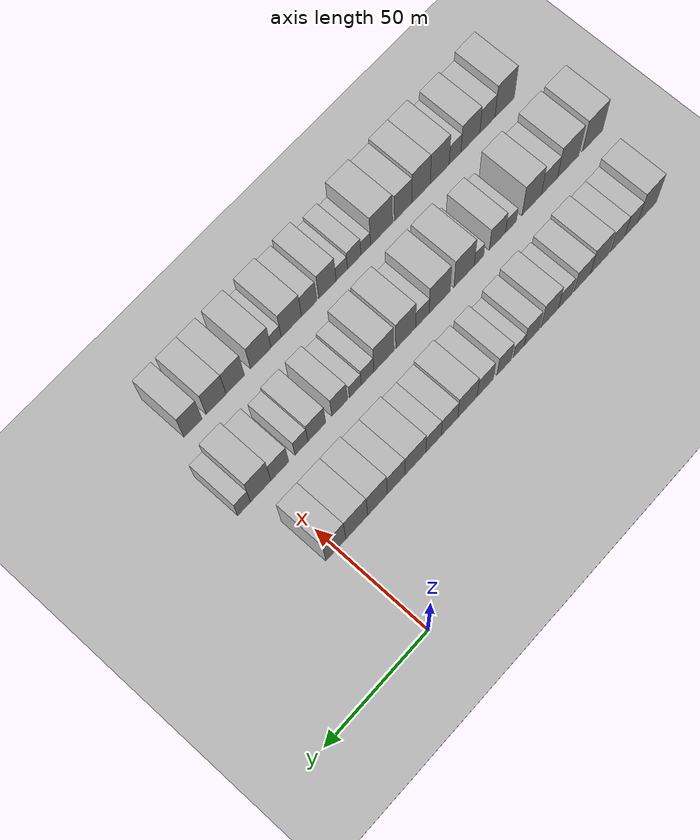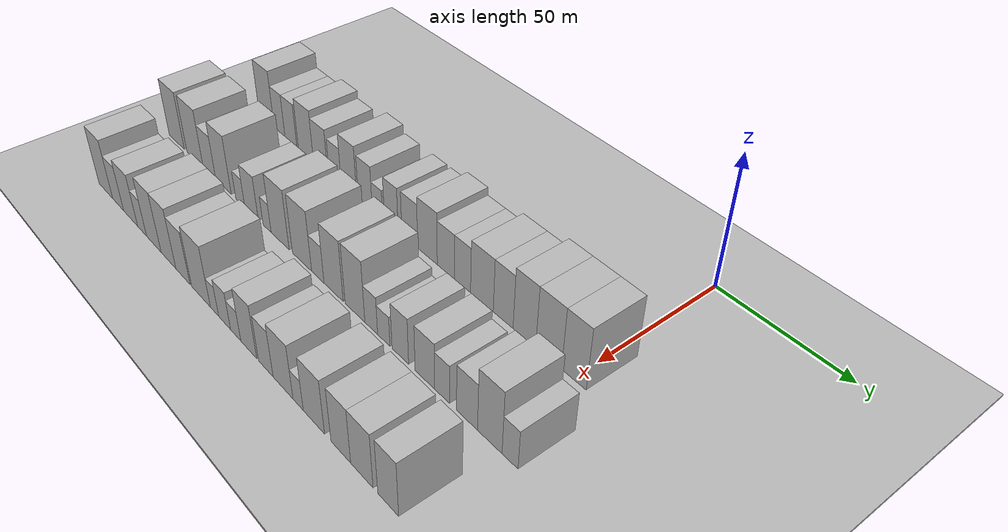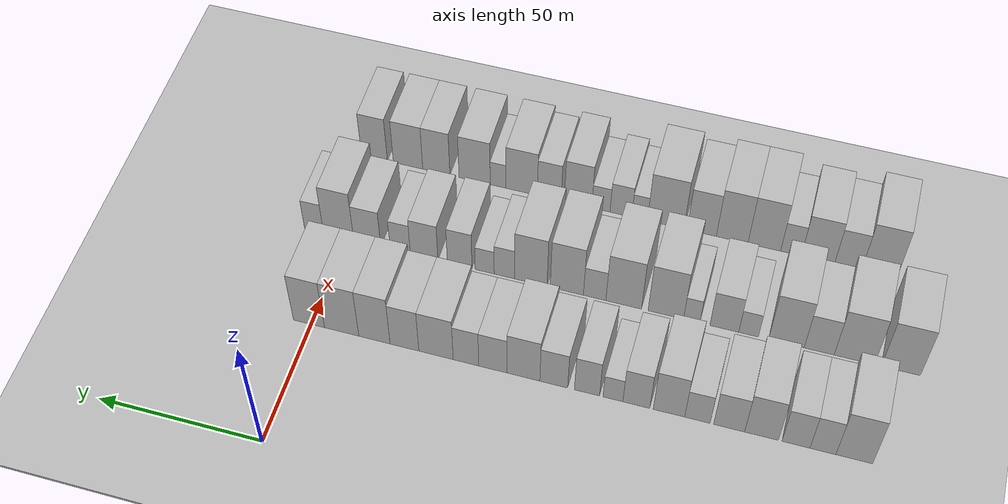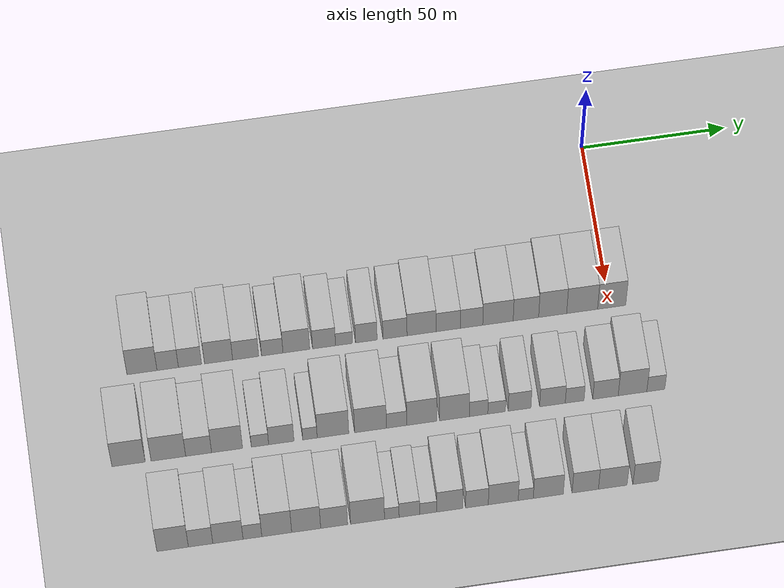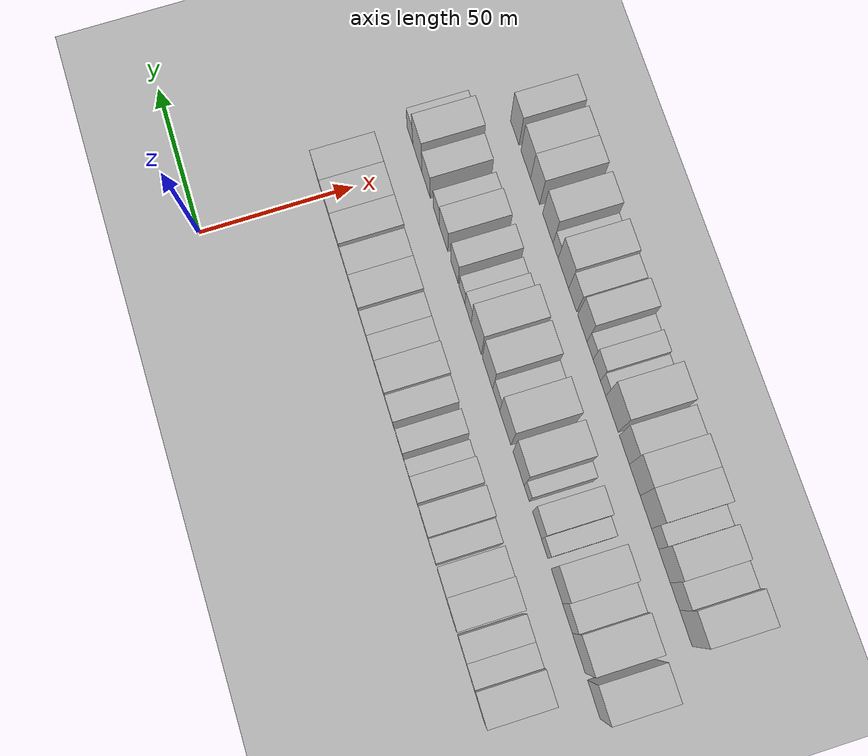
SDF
<sdf version="1.6">
 <world name="default">
  <include><name>ground_plane_1</name><uri>model://HANNAS_ground_plane</uri></include>
  <include>
   <name>ground_plane_2</name>
   <uri>model://HANNAS_ground_plane</uri>
   <pose>100 0 0  0 0 0</pose>
  </include>
  <model name="building_22">
   <static>1</static>
   <pose>50.0000 -160.9771 0 0.000000 0.000000 0.000000</pose>
   <link name="link">
    <pose>0 0 12.00 0 0 0</pose>
    <collision name="collision"><geometry><box><size>20.0000 10.2938 24.0000</size></box></geometry></collision>
    <visual name="visual">
     <cast_shadows>0</cast_shadows>
     <geometry><box><size>20.0000 10.2938 24.0000</size></box></geometry>
     <material>
      <script>
       <uri>model://HANNAS_wall/materials/scripts</uri>
       <uri>model://HANNAS_wall/materials/textures</uri>
       <name>vrc/HANNAS_wall</name>
      </script>
     </material>
    </visual>
   </link>
  </model>
  <model name="building_23">
   <static>1</static>
   <pose>50.0000 -152.1624 0 0.000000 0.000000 0.000000</pose>
   <link name="link">
    <pose>0 0 9.00 0 0 0</pose>
    <collision name="collision"><geometry><box><size>20.0000 7.3357 18.0000</size></box></geometry></collision>
    <visual name="visual">
     <cast_shadows>0</cast_shadows>
     <geometry><box><size>20.0000 7.3357 18.0000</size></box></geometry>
     <material>
      <script>
       <uri>model://HANNAS_wall/materials/scripts</uri>
       <uri>model://HANNAS_wall/materials/textures</uri>
       <name>vrc/HANNAS_wall</name>
      </script>
     </material>
    </visual>
   </link>
  </model>
  <model name="building_24">
   <static>1</static>
   <pose>50.0000 -144.5276 0 0.000000 0.000000 0.000000</pose>
   <link name="link">
    <pose>0 0 9.00 0 0 0</pose>
    <collision name="collision"><geometry><box><size>20.0000 7.9338 18.0000</size></box></geometry></collision>
    <visual name="visual">
     <cast_shadows>0</cast_shadows>
     <geometry><box><size>20.0000 7.9338 18.0000</size></box></geometry>
     <material>
      <script>
       <uri>model://HANNAS_wall/materials/scripts</uri>
       <uri>model://HANNAS_wall/materials/textures</uri>
       <name>vrc/HANNAS_wall</name>
      </script>
     </material>
    </visual>
   </link>
  </model>
  <model name="building_25">
   <static>1</static>
   <pose>50.0000 -134.7322 0 0.000000 0.000000 0.000000</pose>
   <link name="link">
    <pose>0 0 10.50 0 0 0</pose>
    <collision name="collision"><geometry><box><size>20.0000 9.6570 21.0000</size></box></geometry></collision>
    <visual name="visual">
     <cast_shadows>0</cast_shadows>
     <geometry><box><size>20.0000 9.6570 21.0000</size></box></geometry>
     <material>
      <script>
       <uri>model://HANNAS_wall/materials/scripts</uri>
       <uri>model://HANNAS_wall/materials/textures</uri>
       <name>vrc/HANNAS_wall</name>
      </script>
     </material>
    </visual>
   </link>
  </model>
  <model name="building_26">
   <static>1</static>
   <pose>50.0000 -125.4382 0 0.000000 0.000000 0.000000</pose>
   <link name="link">
    <pose>0 0 9.00 0 0 0</pose>
    <collision name="collision"><geometry><box><size>20.0000 8.9311 18.0000</size></box></geometry></collision>
    <visual name="visual">
     <cast_shadows>0</cast_shadows>
     <geometry><box><size>20.0000 8.9311 18.0000</size></box></geometry>
     <material>
      <script>
       <uri>model://HANNAS_wall/materials/scripts</uri>
       <uri>model://HANNAS_wall/materials/textures</uri>
       <name>vrc/HANNAS_wall</name>
      </script>
     </material>
    </visual>
   </link>
  </model>
  <model name="building_27">
   <static>1</static>
   <pose>50.0000 -116.3024 0 0.000000 0.000000 0.000000</pose>
   <link name="link">
    <pose>0 0 7.50 0 0 0</pose>
    <collision name="collision"><geometry><box><size>20.0000 7.3405 15.0000</size></box></geometry></collision>
    <visual name="visual">
     <cast_shadows>0</cast_shadows>
     <geometry><box><size>20.0000 7.3405 15.0000</size></box></geometry>
     <material>
      <script>
       <uri>model://HANNAS_wall/materials/scripts</uri>
       <uri>model://HANNAS_wall/materials/textures</uri>
       <name>vrc/HANNAS_wall</name>
      </script>
     </material>
    </visual>
   </link>
  </model>
  <model name="building_28">
   <static>1</static>
   <pose>50.0000 -108.0398 0 0.000000 0.000000 0.000000</pose>
   <link name="link">
    <pose>0 0 10.50 0 0 0</pose>
    <collision name="collision"><geometry><box><size>20.0000 9.1847 21.0000</size></box></geometry></collision>
    <visual name="visual">
     <cast_shadows>0</cast_shadows>
     <geometry><box><size>20.0000 9.1847 21.0000</size></box></geometry>
     <material>
      <script>
       <uri>model://HANNAS_wall/materials/scripts</uri>
       <uri>model://HANNAS_wall/materials/textures</uri>
       <name>vrc/HANNAS_wall</name>
      </script>
     </material>
    </visual>
   </link>
  </model>
  <model name="building_29">
   <static>1</static>
   <pose>50.0000 -98.5034 0 0.000000 0.000000 0.000000</pose>
   <link name="link">
    <pose>0 0 9.00 0 0 0</pose>
    <collision name="collision"><geometry><box><size>20.0000 7.8880 18.0000</size></box></geometry></collision>
    <visual name="visual">
     <cast_shadows>0</cast_shadows>
     <geometry><box><size>20.0000 7.8880 18.0000</size></box></geometry>
     <material>
      <script>
       <uri>model://HANNAS_wall/materials/scripts</uri>
       <uri>model://HANNAS_wall/materials/textures</uri>
       <name>vrc/HANNAS_wall</name>
      </script>
     </material>
    </visual>
   </link>
  </model>
  <model name="building_30">
   <static>1</static>
   <pose>50.0000 -91.6284 0 0.000000 0.000000 0.000000</pose>
   <link name="link">
    <pose>0 0 6.00 0 0 0</pose>
    <collision name="collision"><geometry><box><size>20.0000 5.8620 12.0000</size></box></geometry></collision>
    <visual name="visual">
     <cast_shadows>0</cast_shadows>
     <geometry><box><size>20.0000 5.8620 12.0000</size></box></geometry>
     <material>
      <script>
       <uri>model://HANNAS_wall/materials/scripts</uri>
       <uri>model://HANNAS_wall/materials/textures</uri>
       <name>vrc/HANNAS_wall</name>
      </script>
     </material>
    </visual>
   </link>
  </model>
  <model name="building_31">
   <static>1</static>
   <pose>50.0000 -83.9766 0 0.000000 0.000000 0.000000</pose>
   <link name="link">
    <pose>0 0 9.00 0 0 0</pose>
    <collision name="collision"><geometry><box><size>20.0000 7.4414 18.0000</size></box></geometry></collision>
    <visual name="visual">
     <cast_shadows>0</cast_shadows>
     <geometry><box><size>20.0000 7.4414 18.0000</size></box></geometry>
     <material>
      <script>
       <uri>model://HANNAS_wall/materials/scripts</uri>
       <uri>model://HANNAS_wall/materials/textures</uri>
       <name>vrc/HANNAS_wall</name>
      </script>
     </material>
    </visual>
   </link>
  </model>
  <model name="building_32">
   <static>1</static>
   <pose>50.0000 -74.1132 0 0.000000 0.000000 0.000000</pose>
   <link name="link">
    <pose>0 0 9.00 0 0 0</pose>
    <collision name="collision"><geometry><box><size>20.0000 8.2855 18.0000</size></box></geometry></collision>
    <visual name="visual">
     <cast_shadows>0</cast_shadows>
     <geometry><box><size>20.0000 8.2855 18.0000</size></box></geometry>
     <material>
      <script>
       <uri>model://HANNAS_wall/materials/scripts</uri>
       <uri>model://HANNAS_wall/materials/textures</uri>
       <name>vrc/HANNAS_wall</name>
      </script>
     </material>
    </visual>
   </link>
  </model>
  <model name="building_33">
   <static>1</static>
   <pose>50.0000 -64.9987 0 0.000000 0.000000 0.000000</pose>
   <link name="link">
    <pose>0 0 10.50 0 0 0</pose>
    <collision name="collision"><geometry><box><size>20.0000 9.9436 21.0000</size></box></geometry></collision>
    <visual name="visual">
     <cast_shadows>0</cast_shadows>
     <geometry><box><size>20.0000 9.9436 21.0000</size></box></geometry>
     <material>
      <script>
       <uri>model://HANNAS_wall/materials/scripts</uri>
       <uri>model://HANNAS_wall/materials/textures</uri>
       <name>vrc/HANNAS_wall</name>
      </script>
     </material>
    </visual>
   </link>
  </model>
  <model name="building_34">
   <static>1</static>
   <pose>50.0000 -55.8091 0 0.000000 0.000000 0.000000</pose>
   <link name="link">
    <pose>0 0 9.00 0 0 0</pose>
    <collision name="collision"><geometry><box><size>20.0000 8.4356 18.0000</size></box></geometry></collision>
    <visual name="visual">
     <cast_shadows>0</cast_shadows>
     <geometry><box><size>20.0000 8.4356 18.0000</size></box></geometry>
     <material>
      <script>
       <uri>model://HANNAS_wall/materials/scripts</uri>
       <uri>model://HANNAS_wall/materials/textures</uri>
       <name>vrc/HANNAS_wall</name>
      </script>
     </material>
    </visual>
   </link>
  </model>
  <model name="building_35">
   <static>1</static>
   <pose>50.0000 -47.7244 0 0.000000 0.000000 0.000000</pose>
   <link name="link">
    <pose>0 0 9.00 0 0 0</pose>
    <collision name="collision"><geometry><box><size>20.0000 7.7337 18.0000</size></box></geometry></collision>
    <visual name="visual">
     <cast_shadows>0</cast_shadows>
     <geometry><box><size>20.0000 7.7337 18.0000</size></box></geometry>
     <material>
      <script>
       <uri>model://HANNAS_wall/materials/scripts</uri>
       <uri>model://HANNAS_wall/materials/textures</uri>
       <name>vrc/HANNAS_wall</name>
      </script>
     </material>
    </visual>
   </link>
  </model>
  <model name="building_36">
   <static>1</static>
   <pose>50.0000 -38.6169 0 0.000000 0.000000 0.000000</pose>
   <link name="link">
    <pose>0 0 10.50 0 0 0</pose>
    <collision name="collision"><geometry><box><size>20.0000 10.4813 21.0000</size></box></geometry></collision>
    <visual name="visual">
     <cast_shadows>0</cast_shadows>
     <geometry><box><size>20.0000 10.4813 21.0000</size></box></geometry>
     <material>
      <script>
       <uri>model://HANNAS_wall/materials/scripts</uri>
       <uri>model://HANNAS_wall/materials/textures</uri>
       <name>vrc/HANNAS_wall</name>
      </script>
     </material>
    </visual>
   </link>
  </model>
  <model name="building_37">
   <static>1</static>
   <pose>50.0000 -28.9720 0 0.000000 0.000000 0.000000</pose>
   <link name="link">
    <pose>0 0 10.50 0 0 0</pose>
    <collision name="collision"><geometry><box><size>20.0000 8.8084 21.0000</size></box></geometry></collision>
    <visual name="visual">
     <cast_shadows>0</cast_shadows>
     <geometry><box><size>20.0000 8.8084 21.0000</size></box></geometry>
     <material>
      <script>
       <uri>model://HANNAS_wall/materials/scripts</uri>
       <uri>model://HANNAS_wall/materials/textures</uri>
       <name>vrc/HANNAS_wall</name>
      </script>
     </material>
    </visual>
   </link>
  </model>
  <model name="building_38">
   <static>1</static>
   <pose>50.0000 -19.7284 0 0.000000 0.000000 0.000000</pose>
   <link name="link">
    <pose>0 0 12.00 0 0 0</pose>
    <collision name="collision"><geometry><box><size>20.0000 9.6789 24.0000</size></box></geometry></collision>
    <visual name="visual">
     <cast_shadows>0</cast_shadows>
     <geometry><box><size>20.0000 9.6789 24.0000</size></box></geometry>
     <material>
      <script>
       <uri>model://HANNAS_wall/materials/scripts</uri>
       <uri>model://HANNAS_wall/materials/textures</uri>
       <name>vrc/HANNAS_wall</name>
      </script>
     </material>
    </visual>
   </link>
  </model>
  <model name="building_39">
   <static>1</static>
   <pose>50.0000 -9.5518 0 0.000000 0.000000 0.000000</pose>
   <link name="link">
    <pose>0 0 12.00 0 0 0</pose>
    <collision name="collision"><geometry><box><size>20.0000 10.6742 24.0000</size></box></geometry></collision>
    <visual name="visual">
     <cast_shadows>0</cast_shadows>
     <geometry><box><size>20.0000 10.6742 24.0000</size></box></geometry>
     <material>
      <script>
       <uri>model://HANNAS_wall/materials/scripts</uri>
       <uri>model://HANNAS_wall/materials/textures</uri>
       <name>vrc/HANNAS_wall</name>
      </script>
     </material>
    </visual>
   </link>
  </model>
  <model name="building_40">
   <static>1</static>
   <pose>50.0000 0.6516 0 0.000000 0.000000 0.000000</pose>
   <link name="link">
    <pose>0 0 12.00 0 0 0</pose>
    <collision name="collision"><geometry><box><size>20.0000 9.7326 24.0000</size></box></geometry></collision>
    <visual name="visual">
     <cast_shadows>0</cast_shadows>
     <geometry><box><size>20.0000 9.7326 24.0000</size></box></geometry>
     <material>
      <script>
       <uri>model://HANNAS_wall/materials/scripts</uri>
       <uri>model://HANNAS_wall/materials/textures</uri>
       <name>vrc/HANNAS_wall</name>
      </script>
     </material>
    </visual>
   </link>
  </model>
  <model name="building_104">
   <static>1</static>
   <pose>82.0000 -169.5747 0 0.000000 0.000000 0.000000</pose>
   <link name="link">
    <pose>0 0 12.00 0 0 0</pose>
    <collision name="collision"><geometry><box><size>20.0000 11.3066 24.0000</size></box></geometry></collision>
    <visual name="visual">
     <cast_shadows>0</cast_shadows>
     <geometry><box><size>20.0000 11.3066 24.0000</size></box></geometry>
     <material>
      <script>
       <uri>model://HANNAS_wall/materials/scripts</uri>
       <uri>model://HANNAS_wall/materials/textures</uri>
       <name>vrc/HANNAS_wall</name>
      </script>
     </material>
    </visual>
   </link>
  </model>
  <model name="building_105">
   <static>1</static>
   <pose>82.0000 -156.0349 0 0.000000 0.000000 0.000000</pose>
   <link name="link">
    <pose>0 0 12.00 0 0 0</pose>
    <collision name="collision"><geometry><box><size>20.0000 11.7731 24.0000</size></box></geometry></collision>
    <visual name="visual">
     <cast_shadows>0</cast_shadows>
     <geometry><box><size>20.0000 11.7731 24.0000</size></box></geometry>
     <material>
      <script>
       <uri>model://HANNAS_wall/materials/scripts</uri>
       <uri>model://HANNAS_wall/materials/textures</uri>
       <name>vrc/HANNAS_wall</name>
      </script>
     </material>
    </visual>
   </link>
  </model>
  <model name="building_106">
   <static>1</static>
   <pose>82.0000 -145.7401 0 0.000000 0.000000 0.000000</pose>
   <link name="link">
    <pose>0 0 9.00 0 0 0</pose>
    <collision name="collision"><geometry><box><size>20.0000 8.8165 18.0000</size></box></geometry></collision>
    <visual name="visual">
     <cast_shadows>0</cast_shadows>
     <geometry><box><size>20.0000 8.8165 18.0000</size></box></geometry>
     <material>
      <script>
       <uri>model://HANNAS_wall/materials/scripts</uri>
       <uri>model://HANNAS_wall/materials/textures</uri>
       <name>vrc/HANNAS_wall</name>
      </script>
     </material>
    </visual>
   </link>
  </model>
  <model name="building_107">
   <static>1</static>
   <pose>82.0000 -136.0598 0 0.000000 0.000000 0.000000</pose>
   <link name="link">
    <pose>0 0 12.00 0 0 0</pose>
    <collision name="collision"><geometry><box><size>20.0000 10.5439 24.0000</size></box></geometry></collision>
    <visual name="visual">
     <cast_shadows>0</cast_shadows>
     <geometry><box><size>20.0000 10.5439 24.0000</size></box></geometry>
     <material>
      <script>
       <uri>model://HANNAS_wall/materials/scripts</uri>
       <uri>model://HANNAS_wall/materials/textures</uri>
       <name>vrc/HANNAS_wall</name>
      </script>
     </material>
    </visual>
   </link>
  </model>
  <model name="building_108">
   <static>1</static>
   <pose>82.0000 -124.8444 0 0.000000 0.000000 0.000000</pose>
   <link name="link">
    <pose>0 0 6.00 0 0 0</pose>
    <collision name="collision"><geometry><box><size>20.0000 5.8870 12.0000</size></box></geometry></collision>
    <visual name="visual">
     <cast_shadows>0</cast_shadows>
     <geometry><box><size>20.0000 5.8870 12.0000</size></box></geometry>
     <material>
      <script>
       <uri>model://HANNAS_wall/materials/scripts</uri>
       <uri>model://HANNAS_wall/materials/textures</uri>
       <name>vrc/HANNAS_wall</name>
      </script>
     </material>
    </visual>
   </link>
  </model>
  <model name="building_109">
   <static>1</static>
   <pose>82.0000 -117.5791 0 0.000000 0.000000 0.000000</pose>
   <link name="link">
    <pose>0 0 9.00 0 0 0</pose>
    <collision name="collision"><geometry><box><size>20.0000 8.6437 18.0000</size></box></geometry></collision>
    <visual name="visual">
     <cast_shadows>0</cast_shadows>
     <geometry><box><size>20.0000 8.6437 18.0000</size></box></geometry>
     <material>
      <script>
       <uri>model://HANNAS_wall/materials/scripts</uri>
       <uri>model://HANNAS_wall/materials/textures</uri>
       <name>vrc/HANNAS_wall</name>
      </script>
     </material>
    </visual>
   </link>
  </model>
  <model name="building_110">
   <static>1</static>
   <pose>82.0000 -107.7934 0 0.000000 0.000000 0.000000</pose>
   <link name="link">
    <pose>0 0 6.00 0 0 0</pose>
    <collision name="collision"><geometry><box><size>20.0000 4.9277 12.0000</size></box></geometry></collision>
    <visual name="visual">
     <cast_shadows>0</cast_shadows>
     <geometry><box><size>20.0000 4.9277 12.0000</size></box></geometry>
     <material>
      <script>
       <uri>model://HANNAS_wall/materials/scripts</uri>
       <uri>model://HANNAS_wall/materials/textures</uri>
       <name>vrc/HANNAS_wall</name>
      </script>
     </material>
    </visual>
   </link>
  </model>
  <model name="building_111">
   <static>1</static>
   <pose>82.0000 -99.9474 0 0.000000 0.000000 0.000000</pose>
   <link name="link">
    <pose>0 0 12.00 0 0 0</pose>
    <collision name="collision"><geometry><box><size>20.0000 10.7643 24.0000</size></box></geometry></collision>
    <visual name="visual">
     <cast_shadows>0</cast_shadows>
     <geometry><box><size>20.0000 10.7643 24.0000</size></box></geometry>
     <material>
      <script>
       <uri>model://HANNAS_wall/materials/scripts</uri>
       <uri>model://HANNAS_wall/materials/textures</uri>
       <name>vrc/HANNAS_wall</name>
      </script>
     </material>
    </visual>
   </link>
  </model>
  <model name="building_112">
   <static>1</static>
   <pose>82.0000 -87.1145 0 0.000000 0.000000 0.000000</pose>
   <link name="link">
    <pose>0 0 12.00 0 0 0</pose>
    <collision name="collision"><geometry><box><size>20.0000 10.9016 24.0000</size></box></geometry></collision>
    <visual name="visual">
     <cast_shadows>0</cast_shadows>
     <geometry><box><size>20.0000 10.9016 24.0000</size></box></geometry>
     <material>
      <script>
       <uri>model://HANNAS_wall/materials/scripts</uri>
       <uri>model://HANNAS_wall/materials/textures</uri>
       <name>vrc/HANNAS_wall</name>
      </script>
     </material>
    </visual>
   </link>
  </model>
  <model name="building_113">
   <static>1</static>
   <pose>82.0000 -78.2129 0 0.000000 0.000000 0.000000</pose>
   <link name="link">
    <pose>0 0 7.50 0 0 0</pose>
    <collision name="collision"><geometry><box><size>20.0000 6.9017 15.0000</size></box></geometry></collision>
    <visual name="visual">
     <cast_shadows>0</cast_shadows>
     <geometry><box><size>20.0000 6.9017 15.0000</size></box></geometry>
     <material>
      <script>
       <uri>model://HANNAS_wall/materials/scripts</uri>
       <uri>model://HANNAS_wall/materials/textures</uri>
       <name>vrc/HANNAS_wall</name>
      </script>
     </material>
    </visual>
   </link>
  </model>
  <model name="building_114">
   <static>1</static>
   <pose>82.0000 -69.6232 0 0.000000 0.000000 0.000000</pose>
   <link name="link">
    <pose>0 0 12.00 0 0 0</pose>
    <collision name="collision"><geometry><box><size>20.0000 10.2777 24.0000</size></box></geometry></collision>
    <visual name="visual">
     <cast_shadows>0</cast_shadows>
     <geometry><box><size>20.0000 10.2777 24.0000</size></box></geometry>
     <material>
      <script>
       <uri>model://HANNAS_wall/materials/scripts</uri>
       <uri>model://HANNAS_wall/materials/textures</uri>
       <name>vrc/HANNAS_wall</name>
      </script>
     </material>
    </visual>
   </link>
  </model>
  <model name="building_115">
   <static>1</static>
   <pose>82.0000 -58.4166 0 0.000000 0.000000 0.000000</pose>
   <link name="link">
    <pose>0 0 12.00 0 0 0</pose>
    <collision name="collision"><geometry><box><size>20.0000 10.1355 24.0000</size></box></geometry></collision>
    <visual name="visual">
     <cast_shadows>0</cast_shadows>
     <geometry><box><size>20.0000 10.1355 24.0000</size></box></geometry>
     <material>
      <script>
       <uri>model://HANNAS_wall/materials/scripts</uri>
       <uri>model://HANNAS_wall/materials/textures</uri>
       <name>vrc/HANNAS_wall</name>
      </script>
     </material>
    </visual>
   </link>
  </model>
  <model name="building_116">
   <static>1</static>
   <pose>82.0000 -50.1716 0 0.000000 0.000000 0.000000</pose>
   <link name="link">
    <pose>0 0 7.50 0 0 0</pose>
    <collision name="collision"><geometry><box><size>20.0000 6.3544 15.0000</size></box></geometry></collision>
    <visual name="visual">
     <cast_shadows>0</cast_shadows>
     <geometry><box><size>20.0000 6.3544 15.0000</size></box></geometry>
     <material>
      <script>
       <uri>model://HANNAS_wall/materials/scripts</uri>
       <uri>model://HANNAS_wall/materials/textures</uri>
       <name>vrc/HANNAS_wall</name>
      </script>
     </material>
    </visual>
   </link>
  </model>
  <model name="building_117">
   <static>1</static>
   <pose>82.0000 -44.0033 0 0.000000 0.000000 0.000000</pose>
   <link name="link">
    <pose>0 0 6.00 0 0 0</pose>
    <collision name="collision"><geometry><box><size>20.0000 5.9822 12.0000</size></box></geometry></collision>
    <visual name="visual">
     <cast_shadows>0</cast_shadows>
     <geometry><box><size>20.0000 5.9822 12.0000</size></box></geometry>
     <material>
      <script>
       <uri>model://HANNAS_wall/materials/scripts</uri>
       <uri>model://HANNAS_wall/materials/textures</uri>
       <name>vrc/HANNAS_wall</name>
      </script>
     </material>
    </visual>
   </link>
  </model>
  <model name="building_118">
   <static>1</static>
   <pose>82.0000 -36.1231 0 0.000000 0.000000 0.000000</pose>
   <link name="link">
    <pose>0 0 9.00 0 0 0</pose>
    <collision name="collision"><geometry><box><size>20.0000 7.7782 18.0000</size></box></geometry></collision>
    <visual name="visual">
     <cast_shadows>0</cast_shadows>
     <geometry><box><size>20.0000 7.7782 18.0000</size></box></geometry>
     <material>
      <script>
       <uri>model://HANNAS_wall/materials/scripts</uri>
       <uri>model://HANNAS_wall/materials/textures</uri>
       <name>vrc/HANNAS_wall</name>
      </script>
     </material>
    </visual>
   </link>
  </model>
  <model name="building_119">
   <static>1</static>
   <pose>82.0000 -24.8423 0 0.000000 0.000000 0.000000</pose>
   <link name="link">
    <pose>0 0 9.00 0 0 0</pose>
    <collision name="collision"><geometry><box><size>20.0000 8.7834 18.0000</size></box></geometry></collision>
    <visual name="visual">
     <cast_shadows>0</cast_shadows>
     <geometry><box><size>20.0000 8.7834 18.0000</size></box></geometry>
     <material>
      <script>
       <uri>model://HANNAS_wall/materials/scripts</uri>
       <uri>model://HANNAS_wall/materials/textures</uri>
       <name>vrc/HANNAS_wall</name>
      </script>
     </material>
    </visual>
   </link>
  </model>
  <model name="building_120">
   <static>1</static>
   <pose>82.0000 -17.2281 0 0.000000 0.000000 0.000000</pose>
   <link name="link">
    <pose>0 0 7.50 0 0 0</pose>
    <collision name="collision"><geometry><box><size>20.0000 6.4450 15.0000</size></box></geometry></collision>
    <visual name="visual">
     <cast_shadows>0</cast_shadows>
     <geometry><box><size>20.0000 6.4450 15.0000</size></box></geometry>
     <material>
      <script>
       <uri>model://HANNAS_wall/materials/scripts</uri>
       <uri>model://HANNAS_wall/materials/textures</uri>
       <name>vrc/HANNAS_wall</name>
      </script>
     </material>
    </visual>
   </link>
  </model>
  <model name="building_121">
   <static>1</static>
   <pose>82.0000 -6.6397 0 0.000000 0.000000 0.000000</pose>
   <link name="link">
    <pose>0 0 9.00 0 0 0</pose>
    <collision name="collision"><geometry><box><size>20.0000 8.7318 18.0000</size></box></geometry></collision>
    <visual name="visual">
     <cast_shadows>0</cast_shadows>
     <geometry><box><size>20.0000 8.7318 18.0000</size></box></geometry>
     <material>
      <script>
       <uri>model://HANNAS_wall/materials/scripts</uri>
       <uri>model://HANNAS_wall/materials/textures</uri>
       <name>vrc/HANNAS_wall</name>
      </script>
     </material>
    </visual>
   </link>
  </model>
  <model name="building_122">
   <static>1</static>
   <pose>82.0000 2.6378 0 0.000000 0.000000 0.000000</pose>
   <link name="link">
    <pose>0 0 12.00 0 0 0</pose>
    <collision name="collision"><geometry><box><size>20.0000 9.8232 24.0000</size></box></geometry></collision>
    <visual name="visual">
     <cast_shadows>0</cast_shadows>
     <geometry><box><size>20.0000 9.8232 24.0000</size></box></geometry>
     <material>
      <script>
       <uri>model://HANNAS_wall/materials/scripts</uri>
       <uri>model://HANNAS_wall/materials/textures</uri>
       <name>vrc/HANNAS_wall</name>
      </script>
     </material>
    </visual>
   </link>
  </model>
  <model name="building_123">
   <static>1</static>
   <pose>82.0000 10.6384 0 0.000000 0.000000 0.000000</pose>
   <link name="link">
    <pose>0 0 7.50 0 0 0</pose>
    <collision name="collision"><geometry><box><size>20.0000 6.1781 15.0000</size></box></geometry></collision>
    <visual name="visual">
     <cast_shadows>0</cast_shadows>
     <geometry><box><size>20.0000 6.1781 15.0000</size></box></geometry>
     <material>
      <script>
       <uri>model://HANNAS_wall/materials/scripts</uri>
       <uri>model://HANNAS_wall/materials/textures</uri>
       <name>vrc/HANNAS_wall</name>
      </script>
     </material>
    </visual>
   </link>
  </model>
  <model name="building_181">
   <static>1</static>
   <pose>114.0000 -158.7139 0 0.000000 0.000000 0.000000</pose>
   <link name="link">
    <pose>0 0 12.00 0 0 0</pose>
    <collision name="collision"><geometry><box><size>20.0000 10.6459 24.0000</size></box></geometry></collision>
    <visual name="visual">
     <cast_shadows>0</cast_shadows>
     <geometry><box><size>20.0000 10.6459 24.0000</size></box></geometry>
     <material>
      <script>
       <uri>model://HANNAS_wall/materials/scripts</uri>
       <uri>model://HANNAS_wall/materials/textures</uri>
       <name>vrc/HANNAS_wall</name>
      </script>
     </material>
    </visual>
   </link>
  </model>
  <model name="building_182">
   <static>1</static>
   <pose>114.0000 -149.2567 0 0.000000 0.000000 0.000000</pose>
   <link name="link">
    <pose>0 0 9.00 0 0 0</pose>
    <collision name="collision"><geometry><box><size>20.0000 8.2686 18.0000</size></box></geometry></collision>
    <visual name="visual">
     <cast_shadows>0</cast_shadows>
     <geometry><box><size>20.0000 8.2686 18.0000</size></box></geometry>
     <material>
      <script>
       <uri>model://HANNAS_wall/materials/scripts</uri>
       <uri>model://HANNAS_wall/materials/textures</uri>
       <name>vrc/HANNAS_wall</name>
      </script>
     </material>
    </visual>
   </link>
  </model>
  <model name="building_183">
   <static>1</static>
   <pose>114.0000 -140.0115 0 0.000000 0.000000 0.000000</pose>
   <link name="link">
    <pose>0 0 10.50 0 0 0</pose>
    <collision name="collision"><geometry><box><size>20.0000 10.2218 21.0000</size></box></geometry></collision>
    <visual name="visual">
     <cast_shadows>0</cast_shadows>
     <geometry><box><size>20.0000 10.2218 21.0000</size></box></geometry>
     <material>
      <script>
       <uri>model://HANNAS_wall/materials/scripts</uri>
       <uri>model://HANNAS_wall/materials/textures</uri>
       <name>vrc/HANNAS_wall</name>
      </script>
     </material>
    </visual>
   </link>
  </model>
  <model name="building_184">
   <static>1</static>
   <pose>114.0000 -131.7333 0 0.000000 0.000000 0.000000</pose>
   <link name="link">
    <pose>0 0 7.50 0 0 0</pose>
    <collision name="collision"><geometry><box><size>20.0000 6.3345 15.0000</size></box></geometry></collision>
    <visual name="visual">
     <cast_shadows>0</cast_shadows>
     <geometry><box><size>20.0000 6.3345 15.0000</size></box></geometry>
     <material>
      <script>
       <uri>model://HANNAS_wall/materials/scripts</uri>
       <uri>model://HANNAS_wall/materials/textures</uri>
       <name>vrc/HANNAS_wall</name>
      </script>
     </material>
    </visual>
   </link>
  </model>
  <model name="building_185">
   <static>1</static>
   <pose>114.0000 -123.5079 0 0.000000 0.000000 0.000000</pose>
   <link name="link">
    <pose>0 0 12.00 0 0 0</pose>
    <collision name="collision"><geometry><box><size>20.0000 10.1165 24.0000</size></box></geometry></collision>
    <visual name="visual">
     <cast_shadows>0</cast_shadows>
     <geometry><box><size>20.0000 10.1165 24.0000</size></box></geometry>
     <material>
      <script>
       <uri>model://HANNAS_wall/materials/scripts</uri>
       <uri>model://HANNAS_wall/materials/textures</uri>
       <name>vrc/HANNAS_wall</name>
      </script>
     </material>
    </visual>
   </link>
  </model>
  <model name="building_186">
   <static>1</static>
   <pose>114.0000 -113.5415 0 0.000000 0.000000 0.000000</pose>
   <link name="link">
    <pose>0 0 12.00 0 0 0</pose>
    <collision name="collision"><geometry><box><size>20.0000 9.8163 24.0000</size></box></geometry></collision>
    <visual name="visual">
     <cast_shadows>0</cast_shadows>
     <geometry><box><size>20.0000 9.8163 24.0000</size></box></geometry>
     <material>
      <script>
       <uri>model://HANNAS_wall/materials/scripts</uri>
       <uri>model://HANNAS_wall/materials/textures</uri>
       <name>vrc/HANNAS_wall</name>
      </script>
     </material>
    </visual>
   </link>
  </model>
  <model name="building_187">
   <static>1</static>
   <pose>114.0000 -104.0672 0 0.000000 0.000000 0.000000</pose>
   <link name="link">
    <pose>0 0 10.50 0 0 0</pose>
    <collision name="collision"><geometry><box><size>20.0000 9.1324 21.0000</size></box></geometry></collision>
    <visual name="visual">
     <cast_shadows>0</cast_shadows>
     <geometry><box><size>20.0000 9.1324 21.0000</size></box></geometry>
     <material>
      <script>
       <uri>model://HANNAS_wall/materials/scripts</uri>
       <uri>model://HANNAS_wall/materials/textures</uri>
       <name>vrc/HANNAS_wall</name>
      </script>
     </material>
    </visual>
   </link>
  </model>
  <model name="building_188">
   <static>1</static>
   <pose>114.0000 -92.7396 0 0.000000 0.000000 0.000000</pose>
   <link name="link">
    <pose>0 0 12.00 0 0 0</pose>
    <collision name="collision"><geometry><box><size>20.0000 11.5228 24.0000</size></box></geometry></collision>
    <visual name="visual">
     <cast_shadows>0</cast_shadows>
     <geometry><box><size>20.0000 11.5228 24.0000</size></box></geometry>
     <material>
      <script>
       <uri>model://HANNAS_wall/materials/scripts</uri>
       <uri>model://HANNAS_wall/materials/textures</uri>
       <name>vrc/HANNAS_wall</name>
      </script>
     </material>
    </visual>
   </link>
  </model>
  <model name="building_189">
   <static>1</static>
   <pose>114.0000 -84.5058 0 0.000000 0.000000 0.000000</pose>
   <link name="link">
    <pose>0 0 6.00 0 0 0</pose>
    <collision name="collision"><geometry><box><size>20.0000 4.9447 12.0000</size></box></geometry></collision>
    <visual name="visual">
     <cast_shadows>0</cast_shadows>
     <geometry><box><size>20.0000 4.9447 12.0000</size></box></geometry>
     <material>
      <script>
       <uri>model://HANNAS_wall/materials/scripts</uri>
       <uri>model://HANNAS_wall/materials/textures</uri>
       <name>vrc/HANNAS_wall</name>
      </script>
     </material>
    </visual>
   </link>
  </model>
  <model name="building_190">
   <static>1</static>
   <pose>114.0000 -78.5611 0 0.000000 0.000000 0.000000</pose>
   <link name="link">
    <pose>0 0 7.50 0 0 0</pose>
    <collision name="collision"><geometry><box><size>20.0000 6.9448 15.0000</size></box></geometry></collision>
    <visual name="visual">
     <cast_shadows>0</cast_shadows>
     <geometry><box><size>20.0000 6.9448 15.0000</size></box></geometry>
     <material>
      <script>
       <uri>model://HANNAS_wall/materials/scripts</uri>
       <uri>model://HANNAS_wall/materials/textures</uri>
       <name>vrc/HANNAS_wall</name>
      </script>
     </material>
    </visual>
   </link>
  </model>
  <model name="building_191">
   <static>1</static>
   <pose>114.0000 -72.1791 0 0.000000 0.000000 0.000000</pose>
   <link name="link">
    <pose>0 0 6.00 0 0 0</pose>
    <collision name="collision"><geometry><box><size>20.0000 5.8192 12.0000</size></box></geometry></collision>
    <visual name="visual">
     <cast_shadows>0</cast_shadows>
     <geometry><box><size>20.0000 5.8192 12.0000</size></box></geometry>
     <material>
      <script>
       <uri>model://HANNAS_wall/materials/scripts</uri>
       <uri>model://HANNAS_wall/materials/textures</uri>
       <name>vrc/HANNAS_wall</name>
      </script>
     </material>
    </visual>
   </link>
  </model>
  <model name="building_192">
   <static>1</static>
   <pose>114.0000 -64.8537 0 0.000000 0.000000 0.000000</pose>
   <link name="link">
    <pose>0 0 10.50 0 0 0</pose>
    <collision name="collision"><geometry><box><size>20.0000 8.8315 21.0000</size></box></geometry></collision>
    <visual name="visual">
     <cast_shadows>0</cast_shadows>
     <geometry><box><size>20.0000 8.8315 21.0000</size></box></geometry>
     <material>
      <script>
       <uri>model://HANNAS_wall/materials/scripts</uri>
       <uri>model://HANNAS_wall/materials/textures</uri>
       <name>vrc/HANNAS_wall</name>
      </script>
     </material>
    </visual>
   </link>
  </model>
  <model name="building_193">
   <static>1</static>
   <pose>114.0000 -55.5780 0 0.000000 0.000000 0.000000</pose>
   <link name="link">
    <pose>0 0 9.00 0 0 0</pose>
    <collision name="collision"><geometry><box><size>20.0000 7.7198 18.0000</size></box></geometry></collision>
    <visual name="visual">
     <cast_shadows>0</cast_shadows>
     <geometry><box><size>20.0000 7.7198 18.0000</size></box></geometry>
     <material>
      <script>
       <uri>model://HANNAS_wall/materials/scripts</uri>
       <uri>model://HANNAS_wall/materials/textures</uri>
       <name>vrc/HANNAS_wall</name>
      </script>
     </material>
    </visual>
   </link>
  </model>
  <model name="building_194">
   <static>1</static>
   <pose>114.0000 -46.6246 0 0.000000 0.000000 0.000000</pose>
   <link name="link">
    <pose>0 0 10.50 0 0 0</pose>
    <collision name="collision"><geometry><box><size>20.0000 10.1871 21.0000</size></box></geometry></collision>
    <visual name="visual">
     <cast_shadows>0</cast_shadows>
     <geometry><box><size>20.0000 10.1871 21.0000</size></box></geometry>
     <material>
      <script>
       <uri>model://HANNAS_wall/materials/scripts</uri>
       <uri>model://HANNAS_wall/materials/textures</uri>
       <name>vrc/HANNAS_wall</name>
      </script>
     </material>
    </visual>
   </link>
  </model>
  <model name="building_195">
   <static>1</static>
   <pose>114.0000 -38.9742 0 0.000000 0.000000 0.000000</pose>
   <link name="link">
    <pose>0 0 6.00 0 0 0</pose>
    <collision name="collision"><geometry><box><size>20.0000 5.1136 12.0000</size></box></geometry></collision>
    <visual name="visual">
     <cast_shadows>0</cast_shadows>
     <geometry><box><size>20.0000 5.1136 12.0000</size></box></geometry>
     <material>
      <script>
       <uri>model://HANNAS_wall/materials/scripts</uri>
       <uri>model://HANNAS_wall/materials/textures</uri>
       <name>vrc/HANNAS_wall</name>
      </script>
     </material>
    </visual>
   </link>
  </model>
  <model name="building_196">
   <static>1</static>
   <pose>114.0000 -31.3085 0 0.000000 0.000000 0.000000</pose>
   <link name="link">
    <pose>0 0 10.50 0 0 0</pose>
    <collision name="collision"><geometry><box><size>20.0000 10.2177 21.0000</size></box></geometry></collision>
    <visual name="visual">
     <cast_shadows>0</cast_shadows>
     <geometry><box><size>20.0000 10.2177 21.0000</size></box></geometry>
     <material>
      <script>
       <uri>model://HANNAS_wall/materials/scripts</uri>
       <uri>model://HANNAS_wall/materials/textures</uri>
       <name>vrc/HANNAS_wall</name>
      </script>
     </material>
    </visual>
   </link>
  </model>
  <model name="building_197">
   <static>1</static>
   <pose>114.0000 -18.7058 0 0.000000 0.000000 0.000000</pose>
   <link name="link">
    <pose>0 0 10.50 0 0 0</pose>
    <collision name="collision"><geometry><box><size>20.0000 8.9875 21.0000</size></box></geometry></collision>
    <visual name="visual">
     <cast_shadows>0</cast_shadows>
     <geometry><box><size>20.0000 8.9875 21.0000</size></box></geometry>
     <material>
      <script>
       <uri>model://HANNAS_wall/materials/scripts</uri>
       <uri>model://HANNAS_wall/materials/textures</uri>
       <name>vrc/HANNAS_wall</name>
      </script>
     </material>
    </visual>
   </link>
  </model>
  <model name="building_198">
   <static>1</static>
   <pose>114.0000 -9.3363 0 0.000000 0.000000 0.000000</pose>
   <link name="link">
    <pose>0 0 10.50 0 0 0</pose>
    <collision name="collision"><geometry><box><size>20.0000 9.7516 21.0000</size></box></geometry></collision>
    <visual name="visual">
     <cast_shadows>0</cast_shadows>
     <geometry><box><size>20.0000 9.7516 21.0000</size></box></geometry>
     <material>
      <script>
       <uri>model://HANNAS_wall/materials/scripts</uri>
       <uri>model://HANNAS_wall/materials/textures</uri>
       <name>vrc/HANNAS_wall</name>
      </script>
     </material>
    </visual>
   </link>
  </model>
  <model name="building_199">
   <static>1</static>
   <pose>114.0000 1.8747 0 0.000000 0.000000 0.000000</pose>
   <link name="link">
    <pose>0 0 10.50 0 0 0</pose>
    <collision name="collision"><geometry><box><size>20.0000 8.6704 21.0000</size></box></geometry></collision>
    <visual name="visual">
     <cast_shadows>0</cast_shadows>
     <geometry><box><size>20.0000 8.6704 21.0000</size></box></geometry>
     <material>
      <script>
       <uri>model://HANNAS_wall/materials/scripts</uri>
       <uri>model://HANNAS_wall/materials/textures</uri>
       <name>vrc/HANNAS_wall</name>
      </script>
     </material>
    </visual>
   </link>
  </model>
 </world>
</sdf>
